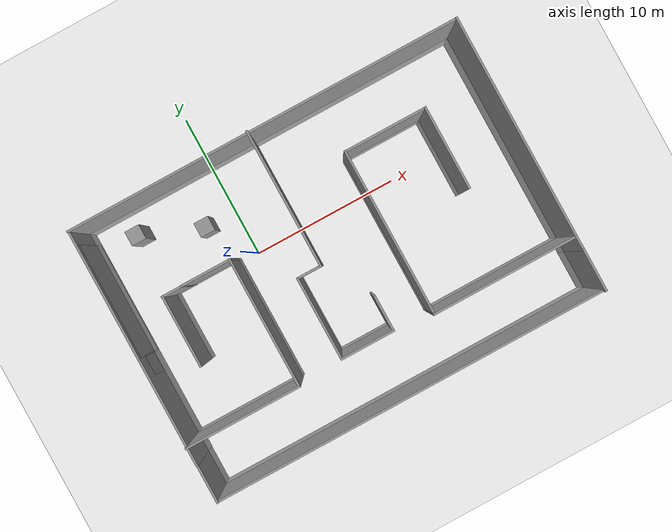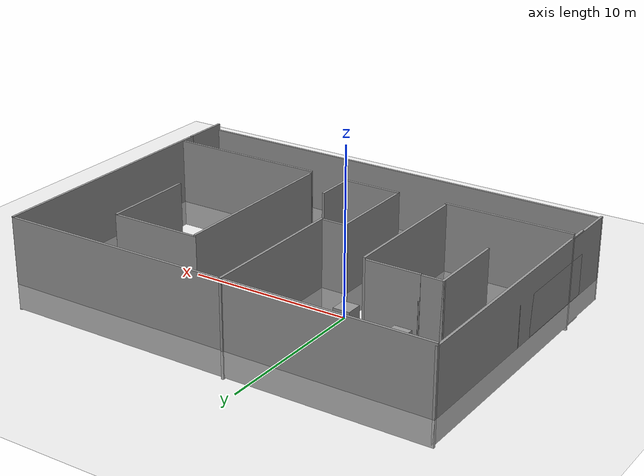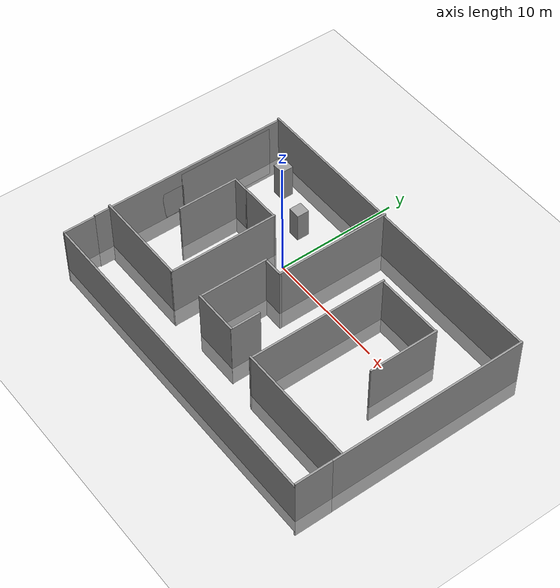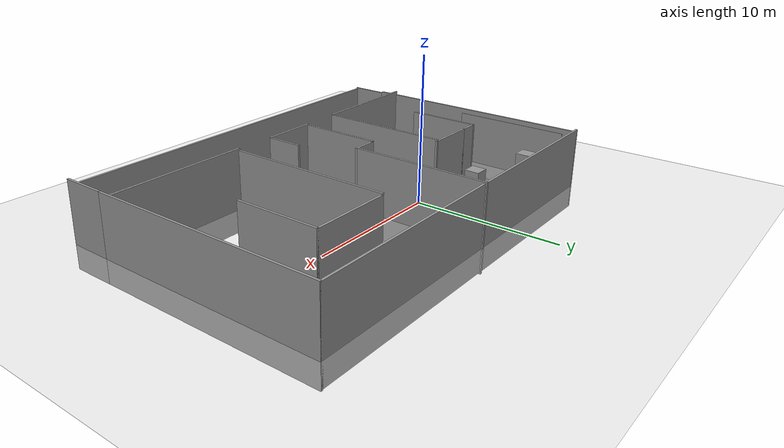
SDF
<sdf version="1.7">
 <world name="default">
  <model name="ground_plane">
   <static>1</static>
   <link name="link">
    <collision name="collision">
     <geometry><plane><normal>0 0 1</normal><size>100 100</size></plane></geometry>
     <surface><friction><ode><mu>100</mu><mu2>50</mu2></ode></friction></surface>
    </collision>
    <visual name="visual">
     <cast_shadows>0</cast_shadows>
     <geometry><plane><normal>0 0 1</normal><size>100 100</size></plane></geometry>
     <material>
      <script><uri>file://media/materials/scripts/gazebo.material</uri><name>Gazebo/Grey</name></script>
     </material>
    </visual>
   </link>
  </model>
  <model name="Untitled">
   <link name="Wall_10">
    <pose>0.00746 -9.51606 8e-06 0 -0 3.14159</pose>
    <inertial>
     <inertia><ixx>0</ixx><ixy>0</ixy><ixz>0</ixz><iyy>0</iyy><iyz>0</iyz><izz>0</izz></inertia>
     <mass>0</mass>
    </inertial>
    <visual name="Wall_10_Visual">
     <pose>0 0 1.25 0 -0 0</pose>
     <geometry><box><size>27.25 0.15 5.06494</size></box></geometry>
     <material>
      <script><uri>file://media/materials/scripts/gazebo.material</uri><name>Gazebo/Grey</name></script>
      <ambient>1 1 1 1</ambient>
      <shader type="pixel"/>
     </material>
     <meta><layer>0</layer></meta>
    </visual>
    <collision name="Wall_10_Collision">
     <pose>0 0 1.25 0 -0 0</pose>
     <geometry><box><size>27.25 0.15 5.06494</size></box></geometry>
     <surface>
      <friction>
       <ode><mu>1</mu><mu2>1</mu2><fdir1>0 0 0</fdir1><slip1>0</slip1><slip2>0</slip2></ode>
       <torsional>
        <coefficient>1</coefficient>
        <patch_radius>0</patch_radius>
        <surface_radius>0</surface_radius>
        <use_patch_radius>1</use_patch_radius>
        <ode><slip>0</slip></ode>
       </torsional>
      </friction>
      <bounce><restitution_coefficient>0</restitution_coefficient><threshold>1e+06</threshold></bounce>
      <contact>
       <collide_without_contact>0</collide_without_contact>
       <collide_without_contact_bitmask>1</collide_without_contact_bitmask>
       <collide_bitmask>1</collide_bitmask>
       <ode>
        <soft_cfm>0</soft_cfm>
        <soft_erp>0.2</soft_erp>
        <kp>1e+13</kp>
        <kd>1</kd>
        <max_vel>0.01</max_vel>
        <min_depth>0</min_depth>
       </ode>
       <bullet>
        <split_impulse>1</split_impulse>
        <split_impulse_penetration_threshold>-0.01</split_impulse_penetration_threshold>
        <soft_cfm>0</soft_cfm>
        <soft_erp>0.2</soft_erp>
        <kp>1e+13</kp>
        <kd>1</kd>
       </bullet>
      </contact>
     </surface>
    </collision>
   </link>
   <link name="Wall_11">
    <pose>-13.5425 -7.59106 0 0 -0 1.5708</pose>
    <inertial>
     <inertia><ixx>0</ixx><ixy>0</ixy><ixz>0</ixz><iyy>0</iyy><iyz>0</iyz><izz>0</izz></inertia>
     <mass>0</mass>
    </inertial>
    <visual name="Wall_11_Visual">
     <pose>0 0 1.25 0 -0 0</pose>
     <geometry><box><size>4 0.15 5.21219</size></box></geometry>
     <material>
      <script><uri>file://media/materials/scripts/gazebo.material</uri><name>Gazebo/Grey</name></script>
      <ambient>1 1 1 1</ambient>
      <shader type="pixel"/>
     </material>
     <meta><layer>0</layer></meta>
    </visual>
    <collision name="Wall_11_Collision">
     <pose>0 0 1.25 0 -0 0</pose>
     <geometry><box><size>4 0.15 5.21219</size></box></geometry>
     <surface>
      <friction>
       <ode><mu>1</mu><mu2>1</mu2><fdir1>0 0 0</fdir1><slip1>0</slip1><slip2>0</slip2></ode>
       <torsional>
        <coefficient>1</coefficient>
        <patch_radius>0</patch_radius>
        <surface_radius>0</surface_radius>
        <use_patch_radius>1</use_patch_radius>
        <ode><slip>0</slip></ode>
       </torsional>
      </friction>
      <bounce><restitution_coefficient>0</restitution_coefficient><threshold>1e+06</threshold></bounce>
      <contact>
       <collide_without_contact>0</collide_without_contact>
       <collide_without_contact_bitmask>1</collide_without_contact_bitmask>
       <collide_bitmask>1</collide_bitmask>
       <ode>
        <soft_cfm>0</soft_cfm>
        <soft_erp>0.2</soft_erp>
        <kp>1e+13</kp>
        <kd>1</kd>
        <max_vel>0.01</max_vel>
        <min_depth>0</min_depth>
       </ode>
       <bullet>
        <split_impulse>1</split_impulse>
        <split_impulse_penetration_threshold>-0.01</split_impulse_penetration_threshold>
        <soft_cfm>0</soft_cfm>
        <soft_erp>0.2</soft_erp>
        <kp>1e+13</kp>
        <kd>1</kd>
       </bullet>
      </contact>
     </surface>
    </collision>
   </link>
   <link name="Wall_13">
    <pose>-9.61754 -5.66606 0 0 -0 0</pose>
    <inertial>
     <inertia><ixx>0</ixx><ixy>0</ixy><ixz>0</ixz><iyy>0</iyy><iyz>0</iyz><izz>0</izz></inertia>
     <mass>0</mass>
    </inertial>
    <visual name="Wall_13_Visual">
     <pose>0 0 1.25 0 -0 0</pose>
     <geometry><box><size>8 0.15 5.87311</size></box></geometry>
     <material>
      <script><uri>file://media/materials/scripts/gazebo.material</uri><name>Gazebo/Grey</name></script>
      <ambient>1 1 1 1</ambient>
      <shader type="pixel"/>
     </material>
     <meta><layer>0</layer></meta>
    </visual>
    <collision name="Wall_13_Collision">
     <pose>0 0 1.25 0 -0 0</pose>
     <geometry><box><size>8 0.15 5.87311</size></box></geometry>
     <surface>
      <friction>
       <ode><mu>1</mu><mu2>1</mu2><fdir1>0 0 0</fdir1><slip1>0</slip1><slip2>0</slip2></ode>
       <torsional>
        <coefficient>1</coefficient>
        <patch_radius>0</patch_radius>
        <surface_radius>0</surface_radius>
        <use_patch_radius>1</use_patch_radius>
        <ode><slip>0</slip></ode>
       </torsional>
      </friction>
      <bounce><restitution_coefficient>0</restitution_coefficient><threshold>1e+06</threshold></bounce>
      <contact>
       <collide_without_contact>0</collide_without_contact>
       <collide_without_contact_bitmask>1</collide_without_contact_bitmask>
       <collide_bitmask>1</collide_bitmask>
       <ode>
        <soft_cfm>0</soft_cfm>
        <soft_erp>0.2</soft_erp>
        <kp>1e+13</kp>
        <kd>1</kd>
        <max_vel>0.01</max_vel>
        <min_depth>0</min_depth>
       </ode>
       <bullet>
        <split_impulse>1</split_impulse>
        <split_impulse_penetration_threshold>-0.01</split_impulse_penetration_threshold>
        <soft_cfm>0</soft_cfm>
        <soft_erp>0.2</soft_erp>
        <kp>1e+13</kp>
        <kd>1</kd>
       </bullet>
      </contact>
     </surface>
    </collision>
   </link>
   <link name="Wall_14">
    <pose>-5.69254 -1.24106 0 0 -0 1.5708</pose>
    <inertial>
     <inertia><ixx>0</ixx><ixy>0</ixy><ixz>0</ixz><iyy>0</iyy><iyz>0</iyz><izz>0</izz></inertia>
     <mass>0</mass>
    </inertial>
    <visual name="Wall_14_Visual">
     <pose>0 0 1.25 0 -0 0</pose>
     <geometry><box><size>9 0.15 5.78816</size></box></geometry>
     <material>
      <script><uri>file://media/materials/scripts/gazebo.material</uri><name>Gazebo/Grey</name></script>
      <ambient>1 1 1 1</ambient>
      <shader type="pixel"/>
     </material>
     <meta><layer>0</layer></meta>
    </visual>
    <collision name="Wall_14_Collision">
     <pose>0 0 1.25 0 -0 0</pose>
     <geometry><box><size>9 0.15 5.78816</size></box></geometry>
     <surface>
      <friction>
       <ode><mu>1</mu><mu2>1</mu2><fdir1>0 0 0</fdir1><slip1>0</slip1><slip2>0</slip2></ode>
       <torsional>
        <coefficient>1</coefficient>
        <patch_radius>0</patch_radius>
        <surface_radius>0</surface_radius>
        <use_patch_radius>1</use_patch_radius>
        <ode><slip>0</slip></ode>
       </torsional>
      </friction>
      <bounce><restitution_coefficient>0</restitution_coefficient><threshold>1e+06</threshold></bounce>
      <contact>
       <collide_without_contact>0</collide_without_contact>
       <collide_without_contact_bitmask>1</collide_without_contact_bitmask>
       <collide_bitmask>1</collide_bitmask>
       <ode>
        <soft_cfm>0</soft_cfm>
        <soft_erp>0.2</soft_erp>
        <kp>1e+13</kp>
        <kd>1</kd>
        <max_vel>0.01</max_vel>
        <min_depth>0</min_depth>
       </ode>
       <bullet>
        <split_impulse>1</split_impulse>
        <split_impulse_penetration_threshold>-0.01</split_impulse_penetration_threshold>
        <soft_cfm>0</soft_cfm>
        <soft_erp>0.2</soft_erp>
        <kp>1e+13</kp>
        <kd>1</kd>
       </bullet>
      </contact>
     </surface>
    </collision>
   </link>
   <link name="Wall_15">
    <pose>-7.36754 3.18394 0 0 -0 3.14159</pose>
    <inertial>
     <inertia><ixx>0</ixx><ixy>0</ixy><ixz>0</ixz><iyy>0</iyy><iyz>0</iyz><izz>0</izz></inertia>
     <mass>0</mass>
    </inertial>
    <visual name="Wall_15_Visual">
     <pose>0 0 1.25 0 -0 0</pose>
     <geometry><box><size>3.5 0.15 5.56245</size></box></geometry>
     <material>
      <script><uri>file://media/materials/scripts/gazebo.material</uri><name>Gazebo/Grey</name></script>
      <ambient>1 1 1 1</ambient>
      <shader type="pixel"/>
     </material>
     <meta><layer>0</layer></meta>
    </visual>
    <collision name="Wall_15_Collision">
     <pose>0 0 1.25 0 -0 0</pose>
     <geometry><box><size>3.5 0.15 5.56245</size></box></geometry>
     <surface>
      <friction>
       <ode><mu>1</mu><mu2>1</mu2><fdir1>0 0 0</fdir1><slip1>0</slip1><slip2>0</slip2></ode>
       <torsional>
        <coefficient>1</coefficient>
        <patch_radius>0</patch_radius>
        <surface_radius>0</surface_radius>
        <use_patch_radius>1</use_patch_radius>
        <ode><slip>0</slip></ode>
       </torsional>
      </friction>
      <bounce><restitution_coefficient>0</restitution_coefficient><threshold>1e+06</threshold></bounce>
      <contact>
       <collide_without_contact>0</collide_without_contact>
       <collide_without_contact_bitmask>1</collide_without_contact_bitmask>
       <collide_bitmask>1</collide_bitmask>
       <ode>
        <soft_cfm>0</soft_cfm>
        <soft_erp>0.2</soft_erp>
        <kp>1e+13</kp>
        <kd>1</kd>
        <max_vel>0.01</max_vel>
        <min_depth>0</min_depth>
       </ode>
       <bullet>
        <split_impulse>1</split_impulse>
        <split_impulse_penetration_threshold>-0.01</split_impulse_penetration_threshold>
        <soft_cfm>0</soft_cfm>
        <soft_erp>0.2</soft_erp>
        <kp>1e+13</kp>
        <kd>1</kd>
       </bullet>
      </contact>
     </surface>
    </collision>
   </link>
   <link name="Wall_17">
    <pose>-9.05207 3.17543 0 0 0 -2.41283</pose>
    <visual name="Wall_17_Visual">
     <pose>0 0 1.25 0 -0 0</pose>
     <geometry><box><size>0.175563 0.15 2.5</size></box></geometry>
     <material>
      <script><uri>file://media/materials/scripts/gazebo.material</uri><name>Gazebo/Grey</name></script>
      <ambient>1 1 1 1</ambient>
      <shader type="pixel"/>
     </material>
     <meta><layer>0</layer></meta>
    </visual>
    <collision name="Wall_17_Collision">
     <pose>0 0 1.25 0 -0 0</pose>
     <geometry><box><size>0.175563 0.15 2.5</size></box></geometry>
     <surface>
      <friction>
       <ode><mu>1</mu><mu2>1</mu2><fdir1>0 0 0</fdir1><slip1>0</slip1><slip2>0</slip2></ode>
       <torsional>
        <coefficient>1</coefficient>
        <patch_radius>0</patch_radius>
        <surface_radius>0</surface_radius>
        <use_patch_radius>1</use_patch_radius>
        <ode><slip>0</slip></ode>
       </torsional>
      </friction>
      <bounce><restitution_coefficient>0</restitution_coefficient><threshold>1e+06</threshold></bounce>
      <contact>
       <collide_without_contact>0</collide_without_contact>
       <collide_without_contact_bitmask>1</collide_without_contact_bitmask>
       <collide_bitmask>1</collide_bitmask>
       <ode>
        <soft_cfm>0</soft_cfm>
        <soft_erp>0.2</soft_erp>
        <kp>1e+13</kp>
        <kd>1</kd>
        <max_vel>0.01</max_vel>
        <min_depth>0</min_depth>
       </ode>
       <bullet>
        <split_impulse>1</split_impulse>
        <split_impulse_penetration_threshold>-0.01</split_impulse_penetration_threshold>
        <soft_cfm>0</soft_cfm>
        <soft_erp>0.2</soft_erp>
        <kp>1e+13</kp>
        <kd>1</kd>
       </bullet>
      </contact>
     </surface>
    </collision>
   </link>
   <link name="Wall_18">
    <pose>-9.73661 3.16691 0 0 -0 3.14159</pose>
    <inertial>
     <inertia><ixx>0</ixx><ixy>0</ixy><ixz>0</ixz><iyy>0</iyy><iyz>0</iyz><izz>0</izz></inertia>
     <mass>0</mass>
    </inertial>
    <visual name="Wall_18_Visual">
     <pose>0 0 1.25 0 -0 0</pose>
     <geometry><box><size>1.5 0.15 5.49631</size></box></geometry>
     <material>
      <script><uri>file://media/materials/scripts/gazebo.material</uri><name>Gazebo/Grey</name></script>
      <ambient>1 1 1 1</ambient>
      <shader type="pixel"/>
     </material>
     <meta><layer>0</layer></meta>
    </visual>
    <collision name="Wall_18_Collision">
     <pose>0 0 1.25 0 -0 0</pose>
     <geometry><box><size>1.5 0.15 5.49631</size></box></geometry>
     <surface>
      <friction>
       <ode><mu>1</mu><mu2>1</mu2><fdir1>0 0 0</fdir1><slip1>0</slip1><slip2>0</slip2></ode>
       <torsional>
        <coefficient>1</coefficient>
        <patch_radius>0</patch_radius>
        <surface_radius>0</surface_radius>
        <use_patch_radius>1</use_patch_radius>
        <ode><slip>0</slip></ode>
       </torsional>
      </friction>
      <bounce><restitution_coefficient>0</restitution_coefficient><threshold>1e+06</threshold></bounce>
      <contact>
       <collide_without_contact>0</collide_without_contact>
       <collide_without_contact_bitmask>1</collide_without_contact_bitmask>
       <collide_bitmask>1</collide_bitmask>
       <ode>
        <soft_cfm>0</soft_cfm>
        <soft_erp>0.2</soft_erp>
        <kp>1e+13</kp>
        <kd>1</kd>
        <max_vel>0.01</max_vel>
        <min_depth>0</min_depth>
       </ode>
       <bullet>
        <split_impulse>1</split_impulse>
        <split_impulse_penetration_threshold>-0.01</split_impulse_penetration_threshold>
        <soft_cfm>0</soft_cfm>
        <soft_erp>0.2</soft_erp>
        <kp>1e+13</kp>
        <kd>1</kd>
       </bullet>
      </contact>
     </surface>
    </collision>
   </link>
   <link name="Wall_19">
    <pose>-10.4066 3.16691 0 0 -0 0</pose>
    <visual name="Wall_19_Visual">
     <pose>0 0 1.25 0 -0 0</pose>
     <geometry><box><size>0.16 0.15 2.5</size></box></geometry>
     <material>
      <script><uri>file://media/materials/scripts/gazebo.material</uri><name>Gazebo/Grey</name></script>
      <ambient>1 1 1 1</ambient>
      <shader type="pixel"/>
     </material>
     <meta><layer>0</layer></meta>
    </visual>
    <collision name="Wall_19_Collision">
     <pose>0 0 1.25 0 -0 0</pose>
     <geometry><box><size>0.16 0.15 2.5</size></box></geometry>
     <surface>
      <friction>
       <ode><mu>1</mu><mu2>1</mu2><fdir1>0 0 0</fdir1><slip1>0</slip1><slip2>0</slip2></ode>
       <torsional>
        <coefficient>1</coefficient>
        <patch_radius>0</patch_radius>
        <surface_radius>0</surface_radius>
        <use_patch_radius>1</use_patch_radius>
        <ode><slip>0</slip></ode>
       </torsional>
      </friction>
      <bounce><restitution_coefficient>0</restitution_coefficient><threshold>1e+06</threshold></bounce>
      <contact>
       <collide_without_contact>0</collide_without_contact>
       <collide_without_contact_bitmask>1</collide_without_contact_bitmask>
       <collide_bitmask>1</collide_bitmask>
       <ode>
        <soft_cfm>0</soft_cfm>
        <soft_erp>0.2</soft_erp>
        <kp>1e+13</kp>
        <kd>1</kd>
        <max_vel>0.01</max_vel>
        <min_depth>0</min_depth>
       </ode>
       <bullet>
        <split_impulse>1</split_impulse>
        <split_impulse_penetration_threshold>-0.01</split_impulse_penetration_threshold>
        <soft_cfm>0</soft_cfm>
        <soft_erp>0.2</soft_erp>
        <kp>1e+13</kp>
        <kd>1</kd>
       </bullet>
      </contact>
     </surface>
    </collision>
   </link>
   <link name="Wall_2">
    <pose>-13.5166 4.49627 0 0 0 -1.5708</pose>
    <inertial>
     <inertia><ixx>0</ixx><ixy>0</ixy><ixz>0</ixz><iyy>0</iyy><iyz>0</iyz><izz>0</izz></inertia>
     <mass>0</mass>
    </inertial>
    <visual name="Wall_2_Visual">
     <pose>0 0 1.25 0 -0 0</pose>
     <geometry><box><size>8 0.15 4.71882</size></box></geometry>
     <material>
      <script><uri>file://media/materials/scripts/gazebo.material</uri><name>Gazebo/Grey</name></script>
      <ambient>1 1 1 1</ambient>
      <shader type="pixel"/>
     </material>
     <meta><layer>0</layer></meta>
    </visual>
    <collision name="Wall_2_Collision">
     <pose>0 0 1.25 0 -0 0</pose>
     <geometry><box><size>8 0.15 4.71882</size></box></geometry>
     <surface>
      <friction>
       <ode><mu>1</mu><mu2>1</mu2><fdir1>0 0 0</fdir1><slip1>0</slip1><slip2>0</slip2></ode>
       <torsional>
        <coefficient>1</coefficient>
        <patch_radius>0</patch_radius>
        <surface_radius>0</surface_radius>
        <use_patch_radius>1</use_patch_radius>
        <ode><slip>0</slip></ode>
       </torsional>
      </friction>
      <bounce><restitution_coefficient>0</restitution_coefficient><threshold>1e+06</threshold></bounce>
      <contact>
       <collide_without_contact>0</collide_without_contact>
       <collide_without_contact_bitmask>1</collide_without_contact_bitmask>
       <collide_bitmask>1</collide_bitmask>
       <ode>
        <soft_cfm>0</soft_cfm>
        <soft_erp>0.2</soft_erp>
        <kp>1e+13</kp>
        <kd>1</kd>
        <max_vel>0.01</max_vel>
        <min_depth>0</min_depth>
       </ode>
       <bullet>
        <split_impulse>1</split_impulse>
        <split_impulse_penetration_threshold>-0.01</split_impulse_penetration_threshold>
        <soft_cfm>0</soft_cfm>
        <soft_erp>0.2</soft_erp>
        <kp>1e+13</kp>
        <kd>1</kd>
       </bullet>
      </contact>
     </surface>
    </collision>
   </link>
   <link name="Wall_20">
    <pose>-10.4016 0.741915 0 0 0 -1.5708</pose>
    <inertial>
     <inertia><ixx>0</ixx><ixy>0</ixy><ixz>0</ixz><iyy>0</iyy><iyz>0</iyz><izz>0</izz></inertia>
     <mass>0</mass>
    </inertial>
    <visual name="Wall_20_Visual">
     <pose>0 0 1.25 0 -0 0</pose>
     <geometry><box><size>5 0.15 5.49986</size></box></geometry>
     <material>
      <script><uri>file://media/materials/scripts/gazebo.material</uri><name>Gazebo/Grey</name></script>
      <ambient>1 1 1 1</ambient>
      <shader type="pixel"/>
     </material>
     <meta><layer>0</layer></meta>
    </visual>
    <collision name="Wall_20_Collision">
     <pose>0 0 1.25 0 -0 0</pose>
     <geometry><box><size>5 0.15 5.49986</size></box></geometry>
     <surface>
      <friction>
       <ode><mu>1</mu><mu2>1</mu2><fdir1>0 0 0</fdir1><slip1>0</slip1><slip2>0</slip2></ode>
       <torsional>
        <coefficient>1</coefficient>
        <patch_radius>0</patch_radius>
        <surface_radius>0</surface_radius>
        <use_patch_radius>1</use_patch_radius>
        <ode><slip>0</slip></ode>
       </torsional>
      </friction>
      <bounce><restitution_coefficient>0</restitution_coefficient><threshold>1e+06</threshold></bounce>
      <contact>
       <collide_without_contact>0</collide_without_contact>
       <collide_without_contact_bitmask>1</collide_without_contact_bitmask>
       <collide_bitmask>1</collide_bitmask>
       <ode>
        <soft_cfm>0</soft_cfm>
        <soft_erp>0.2</soft_erp>
        <kp>1e+13</kp>
        <kd>1</kd>
        <max_vel>0.01</max_vel>
        <min_depth>0</min_depth>
       </ode>
       <bullet>
        <split_impulse>1</split_impulse>
        <split_impulse_penetration_threshold>-0.01</split_impulse_penetration_threshold>
        <soft_cfm>0</soft_cfm>
        <soft_erp>0.2</soft_erp>
        <kp>1e+13</kp>
        <kd>1</kd>
       </bullet>
      </contact>
     </surface>
    </collision>
   </link>
   <link name="Wall_22">
    <pose>8.60205 -5.76493 0 0 -0 3.14159</pose>
    <inertial>
     <inertia><ixx>0</ixx><ixy>0</ixy><ixz>0</ixz><iyy>0</iyy><iyz>0</iyz><izz>0</izz></inertia>
     <mass>0</mass>
    </inertial>
    <visual name="Wall_22_Visual">
     <pose>0 0 1.25 0 -0 0</pose>
     <geometry><box><size>10 0.15 5.77437</size></box></geometry>
     <material>
      <script><uri>file://media/materials/scripts/gazebo.material</uri><name>Gazebo/Grey</name></script>
      <ambient>1 1 1 1</ambient>
      <shader type="pixel"/>
     </material>
     <meta><layer>0</layer></meta>
    </visual>
    <collision name="Wall_22_Collision">
     <pose>0 0 1.25 0 -0 0</pose>
     <geometry><box><size>10 0.15 5.77437</size></box></geometry>
     <surface>
      <friction>
       <ode><mu>1</mu><mu2>1</mu2><fdir1>0 0 0</fdir1><slip1>0</slip1><slip2>0</slip2></ode>
       <torsional>
        <coefficient>1</coefficient>
        <patch_radius>0</patch_radius>
        <surface_radius>0</surface_radius>
        <use_patch_radius>1</use_patch_radius>
        <ode><slip>0</slip></ode>
       </torsional>
      </friction>
      <bounce><restitution_coefficient>0</restitution_coefficient><threshold>1e+06</threshold></bounce>
      <contact>
       <collide_without_contact>0</collide_without_contact>
       <collide_without_contact_bitmask>1</collide_without_contact_bitmask>
       <collide_bitmask>1</collide_bitmask>
       <ode>
        <soft_cfm>0</soft_cfm>
        <soft_erp>0.2</soft_erp>
        <kp>1e+13</kp>
        <kd>1</kd>
        <max_vel>0.01</max_vel>
        <min_depth>0</min_depth>
       </ode>
       <bullet>
        <split_impulse>1</split_impulse>
        <split_impulse_penetration_threshold>-0.01</split_impulse_penetration_threshold>
        <soft_cfm>0</soft_cfm>
        <soft_erp>0.2</soft_erp>
        <kp>1e+13</kp>
        <kd>1</kd>
       </bullet>
      </contact>
     </surface>
    </collision>
   </link>
   <link name="Wall_23">
    <pose>3.68205 -5.76493 0 0 -0 0</pose>
    <visual name="Wall_23_Visual">
     <pose>0 0 1.25 0 -0 0</pose>
     <geometry><box><size>0.16 0.15 2.5</size></box></geometry>
     <material>
      <script><uri>file://media/materials/scripts/gazebo.material</uri><name>Gazebo/Grey</name></script>
      <ambient>1 1 1 1</ambient>
      <shader type="pixel"/>
     </material>
     <meta><layer>0</layer></meta>
    </visual>
    <collision name="Wall_23_Collision">
     <pose>0 0 1.25 0 -0 0</pose>
     <geometry><box><size>0.16 0.15 2.5</size></box></geometry>
     <surface>
      <friction>
       <ode><mu>1</mu><mu2>1</mu2><fdir1>0 0 0</fdir1><slip1>0</slip1><slip2>0</slip2></ode>
       <torsional>
        <coefficient>1</coefficient>
        <patch_radius>0</patch_radius>
        <surface_radius>0</surface_radius>
        <use_patch_radius>1</use_patch_radius>
        <ode><slip>0</slip></ode>
       </torsional>
      </friction>
      <bounce><restitution_coefficient>0</restitution_coefficient><threshold>1e+06</threshold></bounce>
      <contact>
       <collide_without_contact>0</collide_without_contact>
       <collide_without_contact_bitmask>1</collide_without_contact_bitmask>
       <collide_bitmask>1</collide_bitmask>
       <ode>
        <soft_cfm>0</soft_cfm>
        <soft_erp>0.2</soft_erp>
        <kp>1e+13</kp>
        <kd>1</kd>
        <max_vel>0.01</max_vel>
        <min_depth>0</min_depth>
       </ode>
       <bullet>
        <split_impulse>1</split_impulse>
        <split_impulse_penetration_threshold>-0.01</split_impulse_penetration_threshold>
        <soft_cfm>0</soft_cfm>
        <soft_erp>0.2</soft_erp>
        <kp>1e+13</kp>
        <kd>1</kd>
       </bullet>
      </contact>
     </surface>
    </collision>
   </link>
   <link name="Wall_24">
    <pose>3.68704 -0.089934 0 0 -0 1.5708</pose>
    <inertial>
     <inertia><ixx>0</ixx><ixy>0</ixy><ixz>0</ixz><iyy>0</iyy><iyz>0</iyz><izz>0</izz></inertia>
     <mass>0</mass>
    </inertial>
    <visual name="Wall_24_Visual">
     <pose>0 0 1.25 0 -0 0</pose>
     <geometry><box><size>11.5 0.15 5.55251</size></box></geometry>
     <material>
      <script><uri>file://media/materials/scripts/gazebo.material</uri><name>Gazebo/Grey</name></script>
      <ambient>1 1 1 1</ambient>
      <shader type="pixel"/>
     </material>
     <meta><layer>0</layer></meta>
    </visual>
    <collision name="Wall_24_Collision">
     <pose>0 0 1.25 0 -0 0</pose>
     <geometry><box><size>11.5 0.15 5.55251</size></box></geometry>
     <surface>
      <friction>
       <ode><mu>1</mu><mu2>1</mu2><fdir1>0 0 0</fdir1><slip1>0</slip1><slip2>0</slip2></ode>
       <torsional>
        <coefficient>1</coefficient>
        <patch_radius>0</patch_radius>
        <surface_radius>0</surface_radius>
        <use_patch_radius>1</use_patch_radius>
        <ode><slip>0</slip></ode>
       </torsional>
      </friction>
      <bounce><restitution_coefficient>0</restitution_coefficient><threshold>1e+06</threshold></bounce>
      <contact>
       <collide_without_contact>0</collide_without_contact>
       <collide_without_contact_bitmask>1</collide_without_contact_bitmask>
       <collide_bitmask>1</collide_bitmask>
       <ode>
        <soft_cfm>0</soft_cfm>
        <soft_erp>0.2</soft_erp>
        <kp>1e+13</kp>
        <kd>1</kd>
        <max_vel>0.01</max_vel>
        <min_depth>0</min_depth>
       </ode>
       <bullet>
        <split_impulse>1</split_impulse>
        <split_impulse_penetration_threshold>-0.01</split_impulse_penetration_threshold>
        <soft_cfm>0</soft_cfm>
        <soft_erp>0.2</soft_erp>
        <kp>1e+13</kp>
        <kd>1</kd>
       </bullet>
      </contact>
     </surface>
    </collision>
   </link>
   <link name="Wall_25">
    <pose>6.48705 5.58507 0 0 -0 0</pose>
    <inertial>
     <inertia><ixx>0</ixx><ixy>0</ixy><ixz>0</ixz><iyy>0</iyy><iyz>0</iyz><izz>0</izz></inertia>
     <mass>0</mass>
    </inertial>
    <visual name="Wall_25_Visual">
     <pose>0 0 1.25 0 -0 0</pose>
     <geometry><box><size>5.75 0.15 5.33777</size></box></geometry>
     <material>
      <script><uri>file://media/materials/scripts/gazebo.material</uri><name>Gazebo/Grey</name></script>
      <ambient>1 1 1 1</ambient>
      <shader type="pixel"/>
     </material>
     <meta><layer>0</layer></meta>
    </visual>
    <collision name="Wall_25_Collision">
     <pose>0 0 1.25 0 -0 0</pose>
     <geometry><box><size>5.75 0.15 5.33777</size></box></geometry>
     <surface>
      <friction>
       <ode><mu>1</mu><mu2>1</mu2><fdir1>0 0 0</fdir1><slip1>0</slip1><slip2>0</slip2></ode>
       <torsional>
        <coefficient>1</coefficient>
        <patch_radius>0</patch_radius>
        <surface_radius>0</surface_radius>
        <use_patch_radius>1</use_patch_radius>
        <ode><slip>0</slip></ode>
       </torsional>
      </friction>
      <bounce><restitution_coefficient>0</restitution_coefficient><threshold>1e+06</threshold></bounce>
      <contact>
       <collide_without_contact>0</collide_without_contact>
       <collide_without_contact_bitmask>1</collide_without_contact_bitmask>
       <collide_bitmask>1</collide_bitmask>
       <ode>
        <soft_cfm>0</soft_cfm>
        <soft_erp>0.2</soft_erp>
        <kp>1e+13</kp>
        <kd>1</kd>
        <max_vel>0.01</max_vel>
        <min_depth>0</min_depth>
       </ode>
       <bullet>
        <split_impulse>1</split_impulse>
        <split_impulse_penetration_threshold>-0.01</split_impulse_penetration_threshold>
        <soft_cfm>0</soft_cfm>
        <soft_erp>0.2</soft_erp>
        <kp>1e+13</kp>
        <kd>1</kd>
       </bullet>
      </contact>
     </surface>
    </collision>
   </link>
   <link name="Wall_26">
    <pose>9.28705 2.78507 0 0 0 -1.5708</pose>
    <inertial>
     <inertia><ixx>0</ixx><ixy>0</ixy><ixz>0</ixz><iyy>0</iyy><iyz>0</iyz><izz>0</izz></inertia>
     <mass>0</mass>
    </inertial>
    <visual name="Wall_26_Visual">
     <pose>0 0 1.25 0 -0 0</pose>
     <geometry><box><size>5.75 0.15 5.44675</size></box></geometry>
     <material>
      <script><uri>file://media/materials/scripts/gazebo.material</uri><name>Gazebo/Grey</name></script>
      <ambient>1 1 1 1</ambient>
      <shader type="pixel"/>
     </material>
     <meta><layer>0</layer></meta>
    </visual>
    <collision name="Wall_26_Collision">
     <pose>0 0 1.25 0 -0 0</pose>
     <geometry><box><size>5.75 0.15 5.44675</size></box></geometry>
     <surface>
      <friction>
       <ode><mu>1</mu><mu2>1</mu2><fdir1>0 0 0</fdir1><slip1>0</slip1><slip2>0</slip2></ode>
       <torsional>
        <coefficient>1</coefficient>
        <patch_radius>0</patch_radius>
        <surface_radius>0</surface_radius>
        <use_patch_radius>1</use_patch_radius>
        <ode><slip>0</slip></ode>
       </torsional>
      </friction>
      <bounce><restitution_coefficient>0</restitution_coefficient><threshold>1e+06</threshold></bounce>
      <contact>
       <collide_without_contact>0</collide_without_contact>
       <collide_without_contact_bitmask>1</collide_without_contact_bitmask>
       <collide_bitmask>1</collide_bitmask>
       <ode>
        <soft_cfm>0</soft_cfm>
        <soft_erp>0.2</soft_erp>
        <kp>1e+13</kp>
        <kd>1</kd>
        <max_vel>0.01</max_vel>
        <min_depth>0</min_depth>
       </ode>
       <bullet>
        <split_impulse>1</split_impulse>
        <split_impulse_penetration_threshold>-0.01</split_impulse_penetration_threshold>
        <soft_cfm>0</soft_cfm>
        <soft_erp>0.2</soft_erp>
        <kp>1e+13</kp>
        <kd>1</kd>
       </bullet>
      </contact>
     </surface>
    </collision>
   </link>
   <link name="Wall_28">
    <pose>-1.00066 4.84106 0 0 0 -1.5708</pose>
    <inertial>
     <inertia><ixx>0</ixx><ixy>0</ixy><ixz>0</ixz><iyy>0</iyy><iyz>0</iyz><izz>0</izz></inertia>
     <mass>0</mass>
    </inertial>
    <visual name="Wall_28_Visual">
     <pose>0 0 1.25 0 -0 0</pose>
     <geometry><box><size>9.5 0.15 5.88792</size></box></geometry>
     <material>
      <script><uri>file://media/materials/scripts/gazebo.material</uri><name>Gazebo/Grey</name></script>
      <ambient>1 1 1 1</ambient>
      <shader type="pixel"/>
     </material>
     <meta><layer>0</layer></meta>
    </visual>
    <collision name="Wall_28_Collision">
     <pose>0 0 1.25 0 -0 0</pose>
     <geometry><box><size>9.5 0.15 5.88792</size></box></geometry>
     <surface>
      <friction>
       <ode><mu>1</mu><mu2>1</mu2><fdir1>0 0 0</fdir1><slip1>0</slip1><slip2>0</slip2></ode>
       <torsional>
        <coefficient>1</coefficient>
        <patch_radius>0</patch_radius>
        <surface_radius>0</surface_radius>
        <use_patch_radius>1</use_patch_radius>
        <ode><slip>0</slip></ode>
       </torsional>
      </friction>
      <bounce><restitution_coefficient>0</restitution_coefficient><threshold>1e+06</threshold></bounce>
      <contact>
       <collide_without_contact>0</collide_without_contact>
       <collide_without_contact_bitmask>1</collide_without_contact_bitmask>
       <collide_bitmask>1</collide_bitmask>
       <ode>
        <soft_cfm>0</soft_cfm>
        <soft_erp>0.2</soft_erp>
        <kp>1e+13</kp>
        <kd>1</kd>
        <max_vel>0.01</max_vel>
        <min_depth>0</min_depth>
       </ode>
       <bullet>
        <split_impulse>1</split_impulse>
        <split_impulse_penetration_threshold>-0.01</split_impulse_penetration_threshold>
        <soft_cfm>0</soft_cfm>
        <soft_erp>0.2</soft_erp>
        <kp>1e+13</kp>
        <kd>1</kd>
       </bullet>
      </contact>
     </surface>
    </collision>
   </link>
   <link name="Wall_29">
    <pose>-1.80066 0.166061 0 0 -0 3.14159</pose>
    <inertial>
     <inertia><ixx>0</ixx><ixy>0</ixy><ixz>0</ixz><iyy>0</iyy><iyz>0</iyz><izz>0</izz></inertia>
     <mass>0</mass>
    </inertial>
    <visual name="Wall_29_Visual">
     <pose>0 0 1.25 0 -0 0</pose>
     <geometry><box><size>1.75 0.15 5.84351</size></box></geometry>
     <material>
      <script><uri>file://media/materials/scripts/gazebo.material</uri><name>Gazebo/Grey</name></script>
      <ambient>1 1 1 1</ambient>
      <shader type="pixel"/>
     </material>
     <meta><layer>0</layer></meta>
    </visual>
    <collision name="Wall_29_Collision">
     <pose>0 0 1.25 0 -0 0</pose>
     <geometry><box><size>1.75 0.15 5.84351</size></box></geometry>
     <surface>
      <friction>
       <ode><mu>1</mu><mu2>1</mu2><fdir1>0 0 0</fdir1><slip1>0</slip1><slip2>0</slip2></ode>
       <torsional>
        <coefficient>1</coefficient>
        <patch_radius>0</patch_radius>
        <surface_radius>0</surface_radius>
        <use_patch_radius>1</use_patch_radius>
        <ode><slip>0</slip></ode>
       </torsional>
      </friction>
      <bounce><restitution_coefficient>0</restitution_coefficient><threshold>1e+06</threshold></bounce>
      <contact>
       <collide_without_contact>0</collide_without_contact>
       <collide_without_contact_bitmask>1</collide_without_contact_bitmask>
       <collide_bitmask>1</collide_bitmask>
       <ode>
        <soft_cfm>0</soft_cfm>
        <soft_erp>0.2</soft_erp>
        <kp>1e+13</kp>
        <kd>1</kd>
        <max_vel>0.01</max_vel>
        <min_depth>0</min_depth>
       </ode>
       <bullet>
        <split_impulse>1</split_impulse>
        <split_impulse_penetration_threshold>-0.01</split_impulse_penetration_threshold>
        <soft_cfm>0</soft_cfm>
        <soft_erp>0.2</soft_erp>
        <kp>1e+13</kp>
        <kd>1</kd>
       </bullet>
      </contact>
     </surface>
    </collision>
   </link>
   <link name="Wall_30">
    <pose>-2.60066 -2.63394 0 0 0 -1.5708</pose>
    <inertial>
     <inertia><ixx>0</ixx><ixy>0</ixy><ixz>0</ixz><iyy>0</iyy><iyz>0</iyz><izz>0</izz></inertia>
     <mass>0</mass>
    </inertial>
    <visual name="Wall_30_Visual">
     <pose>0 0 1.25 0 -0 0</pose>
     <geometry><box><size>5.75 0.15 5.95229</size></box></geometry>
     <material>
      <script><uri>file://media/materials/scripts/gazebo.material</uri><name>Gazebo/Grey</name></script>
      <ambient>1 1 1 1</ambient>
      <shader type="pixel"/>
     </material>
     <meta><layer>0</layer></meta>
    </visual>
    <collision name="Wall_30_Collision">
     <pose>0 0 1.25 0 -0 0</pose>
     <geometry><box><size>5.75 0.15 5.95229</size></box></geometry>
     <surface>
      <friction>
       <ode><mu>1</mu><mu2>1</mu2><fdir1>0 0 0</fdir1><slip1>0</slip1><slip2>0</slip2></ode>
       <torsional>
        <coefficient>1</coefficient>
        <patch_radius>0</patch_radius>
        <surface_radius>0</surface_radius>
        <use_patch_radius>1</use_patch_radius>
        <ode><slip>0</slip></ode>
       </torsional>
      </friction>
      <bounce><restitution_coefficient>0</restitution_coefficient><threshold>1e+06</threshold></bounce>
      <contact>
       <collide_without_contact>0</collide_without_contact>
       <collide_without_contact_bitmask>1</collide_without_contact_bitmask>
       <collide_bitmask>1</collide_bitmask>
       <ode>
        <soft_cfm>0</soft_cfm>
        <soft_erp>0.2</soft_erp>
        <kp>1e+13</kp>
        <kd>1</kd>
        <max_vel>0.01</max_vel>
        <min_depth>0</min_depth>
       </ode>
       <bullet>
        <split_impulse>1</split_impulse>
        <split_impulse_penetration_threshold>-0.01</split_impulse_penetration_threshold>
        <soft_cfm>0</soft_cfm>
        <soft_erp>0.2</soft_erp>
        <kp>1e+13</kp>
        <kd>1</kd>
       </bullet>
      </contact>
     </surface>
    </collision>
   </link>
   <link name="Wall_31">
    <pose>-0.800662 -5.43394 0 0 -0 0</pose>
    <inertial>
     <inertia><ixx>0</ixx><ixy>0</ixy><ixz>0</ixz><iyy>0</iyy><iyz>0</iyz><izz>0</izz></inertia>
     <mass>0</mass>
    </inertial>
    <visual name="Wall_31_Visual">
     <pose>0 0 1.25 0 -0 0</pose>
     <geometry><box><size>3.75 0.15 6.00706</size></box></geometry>
     <material>
      <script><uri>file://media/materials/scripts/gazebo.material</uri><name>Gazebo/Grey</name></script>
      <ambient>1 1 1 1</ambient>
      <shader type="pixel"/>
     </material>
     <meta><layer>0</layer></meta>
    </visual>
    <collision name="Wall_31_Collision">
     <pose>0 0 1.25 0 -0 0</pose>
     <geometry><box><size>3.75 0.15 6.00706</size></box></geometry>
     <surface>
      <friction>
       <ode><mu>1</mu><mu2>1</mu2><fdir1>0 0 0</fdir1><slip1>0</slip1><slip2>0</slip2></ode>
       <torsional>
        <coefficient>1</coefficient>
        <patch_radius>0</patch_radius>
        <surface_radius>0</surface_radius>
        <use_patch_radius>1</use_patch_radius>
        <ode><slip>0</slip></ode>
       </torsional>
      </friction>
      <bounce><restitution_coefficient>0</restitution_coefficient><threshold>1e+06</threshold></bounce>
      <contact>
       <collide_without_contact>0</collide_without_contact>
       <collide_without_contact_bitmask>1</collide_without_contact_bitmask>
       <collide_bitmask>1</collide_bitmask>
       <ode>
        <soft_cfm>0</soft_cfm>
        <soft_erp>0.2</soft_erp>
        <kp>1e+13</kp>
        <kd>1</kd>
        <max_vel>0.01</max_vel>
        <min_depth>0</min_depth>
       </ode>
       <bullet>
        <split_impulse>1</split_impulse>
        <split_impulse_penetration_threshold>-0.01</split_impulse_penetration_threshold>
        <soft_cfm>0</soft_cfm>
        <soft_erp>0.2</soft_erp>
        <kp>1e+13</kp>
        <kd>1</kd>
       </bullet>
      </contact>
     </surface>
    </collision>
   </link>
   <link name="Wall_32">
    <pose>0.999339 -4.25894 0 0 -0 1.5708</pose>
    <inertial>
     <inertia><ixx>0</ixx><ixy>0</ixy><ixz>0</ixz><iyy>0</iyy><iyz>0</iyz><izz>0</izz></inertia>
     <mass>0</mass>
    </inertial>
    <visual name="Wall_32_Visual">
     <pose>0 0 1.25 0 -0 0</pose>
     <geometry><box><size>2.5 0.15 5.92649</size></box></geometry>
     <material>
      <script><uri>file://media/materials/scripts/gazebo.material</uri><name>Gazebo/Grey</name></script>
      <ambient>1 1 1 1</ambient>
      <shader type="pixel"/>
     </material>
     <meta><layer>0</layer></meta>
    </visual>
    <collision name="Wall_32_Collision">
     <pose>0 0 1.25 0 -0 0</pose>
     <geometry><box><size>2.5 0.15 5.92649</size></box></geometry>
     <surface>
      <friction>
       <ode><mu>1</mu><mu2>1</mu2><fdir1>0 0 0</fdir1><slip1>0</slip1><slip2>0</slip2></ode>
       <torsional>
        <coefficient>1</coefficient>
        <patch_radius>0</patch_radius>
        <surface_radius>0</surface_radius>
        <use_patch_radius>1</use_patch_radius>
        <ode><slip>0</slip></ode>
       </torsional>
      </friction>
      <bounce><restitution_coefficient>0</restitution_coefficient><threshold>1e+06</threshold></bounce>
      <contact>
       <collide_without_contact>0</collide_without_contact>
       <collide_without_contact_bitmask>1</collide_without_contact_bitmask>
       <collide_bitmask>1</collide_bitmask>
       <ode>
        <soft_cfm>0</soft_cfm>
        <soft_erp>0.2</soft_erp>
        <kp>1e+13</kp>
        <kd>1</kd>
        <max_vel>0.01</max_vel>
        <min_depth>0</min_depth>
       </ode>
       <bullet>
        <split_impulse>1</split_impulse>
        <split_impulse_penetration_threshold>-0.01</split_impulse_penetration_threshold>
        <soft_cfm>0</soft_cfm>
        <soft_erp>0.2</soft_erp>
        <kp>1e+13</kp>
        <kd>1</kd>
       </bullet>
      </contact>
     </surface>
    </collision>
   </link>
   <link name="Wall_4">
    <pose>-13.5296 0.627603 0 0 -0 1.79722</pose>
    <visual name="Wall_4_Visual">
     <pose>0 0 1.25 0 -0 0</pose>
     <geometry><box><size>0.265623 0.15 2.5</size></box></geometry>
     <material>
      <script><uri>file://media/materials/scripts/gazebo.material</uri><name>Gazebo/Grey</name></script>
      <ambient>1 1 1 1</ambient>
      <shader type="pixel"/>
     </material>
     <meta><layer>0</layer></meta>
    </visual>
    <collision name="Wall_4_Collision">
     <pose>0 0 1.25 0 -0 0</pose>
     <geometry><box><size>0.265623 0.15 2.5</size></box></geometry>
     <surface>
      <friction>
       <ode><mu>1</mu><mu2>1</mu2><fdir1>0 0 0</fdir1><slip1>0</slip1><slip2>0</slip2></ode>
       <torsional>
        <coefficient>1</coefficient>
        <patch_radius>0</patch_radius>
        <surface_radius>0</surface_radius>
        <use_patch_radius>1</use_patch_radius>
        <ode><slip>0</slip></ode>
       </torsional>
      </friction>
      <bounce><restitution_coefficient>0</restitution_coefficient><threshold>1e+06</threshold></bounce>
      <contact>
       <collide_without_contact>0</collide_without_contact>
       <collide_without_contact_bitmask>1</collide_without_contact_bitmask>
       <collide_bitmask>1</collide_bitmask>
       <ode>
        <soft_cfm>0</soft_cfm>
        <soft_erp>0.2</soft_erp>
        <kp>1e+13</kp>
        <kd>1</kd>
        <max_vel>0.01</max_vel>
        <min_depth>0</min_depth>
       </ode>
       <bullet>
        <split_impulse>1</split_impulse>
        <split_impulse_penetration_threshold>-0.01</split_impulse_penetration_threshold>
        <soft_cfm>0</soft_cfm>
        <soft_erp>0.2</soft_erp>
        <kp>1e+13</kp>
        <kd>1</kd>
       </bullet>
      </contact>
     </surface>
    </collision>
   </link>
   <link name="Wall_5">
    <pose>-13.5425 -3.11606 0 0 0 -1.5708</pose>
    <visual name="Wall_5_Visual">
     <pose>0 0 1.25 0 -0 0</pose>
     <geometry><box><size>7.75 0.15 2.5</size></box></geometry>
     <material>
      <script><uri>file://media/materials/scripts/gazebo.material</uri><name>Gazebo/Grey</name></script>
      <ambient>1 1 1 1</ambient>
      <shader type="pixel"/>
     </material>
     <meta><layer>0</layer></meta>
    </visual>
    <collision name="Wall_5_Collision">
     <pose>0 0 1.25 0 -0 0</pose>
     <geometry><box><size>7.75 0.15 2.5</size></box></geometry>
     <surface>
      <friction>
       <ode><mu>1</mu><mu2>1</mu2><fdir1>0 0 0</fdir1><slip1>0</slip1><slip2>0</slip2></ode>
       <torsional>
        <coefficient>1</coefficient>
        <patch_radius>0</patch_radius>
        <surface_radius>0</surface_radius>
        <use_patch_radius>1</use_patch_radius>
        <ode><slip>0</slip></ode>
       </torsional>
      </friction>
      <bounce><restitution_coefficient>0</restitution_coefficient><threshold>1e+06</threshold></bounce>
      <contact>
       <collide_without_contact>0</collide_without_contact>
       <collide_without_contact_bitmask>1</collide_without_contact_bitmask>
       <collide_bitmask>1</collide_bitmask>
       <ode>
        <soft_cfm>0</soft_cfm>
        <soft_erp>0.2</soft_erp>
        <kp>1e+13</kp>
        <kd>1</kd>
        <max_vel>0.01</max_vel>
        <min_depth>0</min_depth>
       </ode>
       <bullet>
        <split_impulse>1</split_impulse>
        <split_impulse_penetration_threshold>-0.01</split_impulse_penetration_threshold>
        <soft_cfm>0</soft_cfm>
        <soft_erp>0.2</soft_erp>
        <kp>1e+13</kp>
        <kd>1</kd>
       </bullet>
      </contact>
     </surface>
    </collision>
   </link>
   <link name="Wall_6">
    <pose>-13.5425 1.25894 0 0 -0 1.5708</pose>
    <inertial>
     <inertia><ixx>0</ixx><ixy>0</ixy><ixz>0</ixz><iyy>0</iyy><iyz>0</iyz><izz>0</izz></inertia>
     <mass>0</mass>
    </inertial>
    <visual name="Wall_6_Visual">
     <pose>0 0 1.25 0 -0 0</pose>
     <geometry><box><size>16.5 0.15 5.38914</size></box></geometry>
     <material>
      <script><uri>file://media/materials/scripts/gazebo.material</uri><name>Gazebo/Grey</name></script>
      <ambient>1 1 1 1</ambient>
      <shader type="pixel"/>
     </material>
     <meta><layer>0</layer></meta>
    </visual>
    <collision name="Wall_6_Collision">
     <pose>0 0 1.25 0 -0 0</pose>
     <geometry><box><size>16.5 0.15 5.38914</size></box></geometry>
     <surface>
      <friction>
       <ode><mu>1</mu><mu2>1</mu2><fdir1>0 0 0</fdir1><slip1>0</slip1><slip2>0</slip2></ode>
       <torsional>
        <coefficient>1</coefficient>
        <patch_radius>0</patch_radius>
        <surface_radius>0</surface_radius>
        <use_patch_radius>1</use_patch_radius>
        <ode><slip>0</slip></ode>
       </torsional>
      </friction>
      <bounce><restitution_coefficient>0</restitution_coefficient><threshold>1e+06</threshold></bounce>
      <contact>
       <collide_without_contact>0</collide_without_contact>
       <collide_without_contact_bitmask>1</collide_without_contact_bitmask>
       <collide_bitmask>1</collide_bitmask>
       <ode>
        <soft_cfm>0</soft_cfm>
        <soft_erp>0.2</soft_erp>
        <kp>1e+13</kp>
        <kd>1</kd>
        <max_vel>0.01</max_vel>
        <min_depth>0</min_depth>
       </ode>
       <bullet>
        <split_impulse>1</split_impulse>
        <split_impulse_penetration_threshold>-0.01</split_impulse_penetration_threshold>
        <soft_cfm>0</soft_cfm>
        <soft_erp>0.2</soft_erp>
        <kp>1e+13</kp>
        <kd>1</kd>
       </bullet>
      </contact>
     </surface>
    </collision>
   </link>
   <link name="Wall_7">
    <pose>0.00746 9.43394 0 0 -0 0</pose>
    <inertial>
     <inertia><ixx>0</ixx><ixy>0</ixy><ixz>0</ixz><iyy>0</iyy><iyz>0</iyz><izz>0</izz></inertia>
     <mass>0</mass>
    </inertial>
    <visual name="Wall_7_Visual">
     <pose>0 0 1.25 0 -0 0</pose>
     <geometry><box><size>27.25 0.15 5.70182</size></box></geometry>
     <material>
      <script><uri>file://media/materials/scripts/gazebo.material</uri><name>Gazebo/Grey</name></script>
      <ambient>1 1 1 1</ambient>
      <shader type="pixel"/>
     </material>
     <meta><layer>0</layer></meta>
    </visual>
    <collision name="Wall_7_Collision">
     <pose>0 0 1.25 0 -0 0</pose>
     <geometry><box><size>27.25 0.15 5.70182</size></box></geometry>
     <surface>
      <friction>
       <ode><mu>1</mu><mu2>1</mu2><fdir1>0 0 0</fdir1><slip1>0</slip1><slip2>0</slip2></ode>
       <torsional>
        <coefficient>1</coefficient>
        <patch_radius>0</patch_radius>
        <surface_radius>0</surface_radius>
        <use_patch_radius>1</use_patch_radius>
        <ode><slip>0</slip></ode>
       </torsional>
      </friction>
      <bounce><restitution_coefficient>0</restitution_coefficient><threshold>1e+06</threshold></bounce>
      <contact>
       <collide_without_contact>0</collide_without_contact>
       <collide_without_contact_bitmask>1</collide_without_contact_bitmask>
       <collide_bitmask>1</collide_bitmask>
       <ode>
        <soft_cfm>0</soft_cfm>
        <soft_erp>0.2</soft_erp>
        <kp>1e+13</kp>
        <kd>1</kd>
        <max_vel>0.01</max_vel>
        <min_depth>0</min_depth>
       </ode>
       <bullet>
        <split_impulse>1</split_impulse>
        <split_impulse_penetration_threshold>-0.01</split_impulse_penetration_threshold>
        <soft_cfm>0</soft_cfm>
        <soft_erp>0.2</soft_erp>
        <kp>1e+13</kp>
        <kd>1</kd>
       </bullet>
      </contact>
     </surface>
    </collision>
   </link>
   <link name="Wall_8">
    <pose>13.5575 1.38394 0 0 0 -1.5708</pose>
    <inertial>
     <inertia><ixx>0</ixx><ixy>0</ixy><ixz>0</ixz><iyy>0</iyy><iyz>0</iyz><izz>0</izz></inertia>
     <mass>0</mass>
    </inertial>
    <visual name="Wall_8_Visual">
     <pose>0 0 1.25 0 -0 0</pose>
     <geometry><box><size>16.25 0.15 5.81132</size></box></geometry>
     <material>
      <script><uri>file://media/materials/scripts/gazebo.material</uri><name>Gazebo/Grey</name></script>
      <ambient>1 1 1 1</ambient>
      <shader type="pixel"/>
     </material>
     <meta><layer>0</layer></meta>
    </visual>
    <collision name="Wall_8_Collision">
     <pose>0 0 1.25 0 -0 0</pose>
     <geometry><box><size>16.25 0.15 5.81132</size></box></geometry>
     <surface>
      <friction>
       <ode><mu>1</mu><mu2>1</mu2><fdir1>0 0 0</fdir1><slip1>0</slip1><slip2>0</slip2></ode>
       <torsional>
        <coefficient>1</coefficient>
        <patch_radius>0</patch_radius>
        <surface_radius>0</surface_radius>
        <use_patch_radius>1</use_patch_radius>
        <ode><slip>0</slip></ode>
       </torsional>
      </friction>
      <bounce><restitution_coefficient>0</restitution_coefficient><threshold>1e+06</threshold></bounce>
      <contact>
       <collide_without_contact>0</collide_without_contact>
       <collide_without_contact_bitmask>1</collide_without_contact_bitmask>
       <collide_bitmask>1</collide_bitmask>
       <ode>
        <soft_cfm>0</soft_cfm>
        <soft_erp>0.2</soft_erp>
        <kp>1e+13</kp>
        <kd>1</kd>
        <max_vel>0.01</max_vel>
        <min_depth>0</min_depth>
       </ode>
       <bullet>
        <split_impulse>1</split_impulse>
        <split_impulse_penetration_threshold>-0.01</split_impulse_penetration_threshold>
        <soft_cfm>0</soft_cfm>
        <soft_erp>0.2</soft_erp>
        <kp>1e+13</kp>
        <kd>1</kd>
       </bullet>
      </contact>
     </surface>
    </collision>
   </link>
   <link name="Wall_9">
    <pose>13.5575 -8.09106 0 0 0 -1.5708</pose>
    <inertial>
     <inertia><ixx>0</ixx><ixy>0</ixy><ixz>0</ixz><iyy>0</iyy><iyz>0</iyz><izz>0</izz></inertia>
     <mass>0</mass>
    </inertial>
    <visual name="Wall_9_Visual">
     <pose>0 0 1.25 0 -0 0</pose>
     <geometry><box><size>3 0.15 5.84219</size></box></geometry>
     <material>
      <script><uri>file://media/materials/scripts/gazebo.material</uri><name>Gazebo/Grey</name></script>
      <ambient>1 1 1 1</ambient>
      <shader type="pixel"/>
     </material>
     <meta><layer>0</layer></meta>
    </visual>
    <collision name="Wall_9_Collision">
     <pose>0 0 1.25 0 -0 0</pose>
     <geometry><box><size>3 0.15 5.84219</size></box></geometry>
     <surface>
      <friction>
       <ode><mu>1</mu><mu2>1</mu2><fdir1>0 0 0</fdir1><slip1>0</slip1><slip2>0</slip2></ode>
       <torsional>
        <coefficient>1</coefficient>
        <patch_radius>0</patch_radius>
        <surface_radius>0</surface_radius>
        <use_patch_radius>1</use_patch_radius>
        <ode><slip>0</slip></ode>
       </torsional>
      </friction>
      <bounce><restitution_coefficient>0</restitution_coefficient><threshold>1e+06</threshold></bounce>
      <contact>
       <collide_without_contact>0</collide_without_contact>
       <collide_without_contact_bitmask>1</collide_without_contact_bitmask>
       <collide_bitmask>1</collide_bitmask>
       <ode>
        <soft_cfm>0</soft_cfm>
        <soft_erp>0.2</soft_erp>
        <kp>1e+13</kp>
        <kd>1</kd>
        <max_vel>0.01</max_vel>
        <min_depth>0</min_depth>
       </ode>
       <bullet>
        <split_impulse>1</split_impulse>
        <split_impulse_penetration_threshold>-0.01</split_impulse_penetration_threshold>
        <soft_cfm>0</soft_cfm>
        <soft_erp>0.2</soft_erp>
        <kp>1e+13</kp>
        <kd>1</kd>
       </bullet>
      </contact>
     </surface>
    </collision>
   </link>
   <static>1</static>
   <pose>4.27889 -2.87264 0 0 -0 0</pose>
  </model>
  <model name="unit_box_clone">
   <pose>-2 3 1.25137 2e-06 -2e-06 -0.00173</pose>
   <link name="link">
    <inertial>
     <mass>1</mass>
     <inertia>
      <ixx>0.166667</ixx>
      <ixy>0</ixy>
      <ixz>0</ixz>
      <iyy>0.166667</iyy>
      <iyz>0</iyz>
      <izz>0.166667</izz>
     </inertia>
    </inertial>
    <collision name="collision"><geometry><box><size>1 1 2.50274</size></box></geometry></collision>
    <visual name="visual">
     <geometry><box><size>1 1 2.50274</size></box></geometry>
     <material>
      <script><name>Gazebo/Grey</name><uri>file://media/materials/scripts/gazebo.material</uri></script>
     </material>
    </visual>
   </link>
  </model>
  <model name="unit_box_clone_0">
   <pose>-6 4.56266 1.43651 2e-06 1e-06 -1.8e-05</pose>
   <link name="link">
    <inertial>
     <mass>1</mass>
     <inertia>
      <ixx>0.166667</ixx>
      <ixy>0</ixy>
      <ixz>0</ixz>
      <iyy>0.166667</iyy>
      <iyz>0</iyz>
      <izz>0.166667</izz>
     </inertia>
    </inertial>
    <collision name="collision"><geometry><box><size>1 1 2.87303</size></box></geometry></collision>
    <visual name="visual">
     <geometry><box><size>1 1 2.87303</size></box></geometry>
     <material>
      <script><name>Gazebo/Grey</name><uri>file://media/materials/scripts/gazebo.material</uri></script>
     </material>
    </visual>
   </link>
  </model>
 </world>
</sdf>
